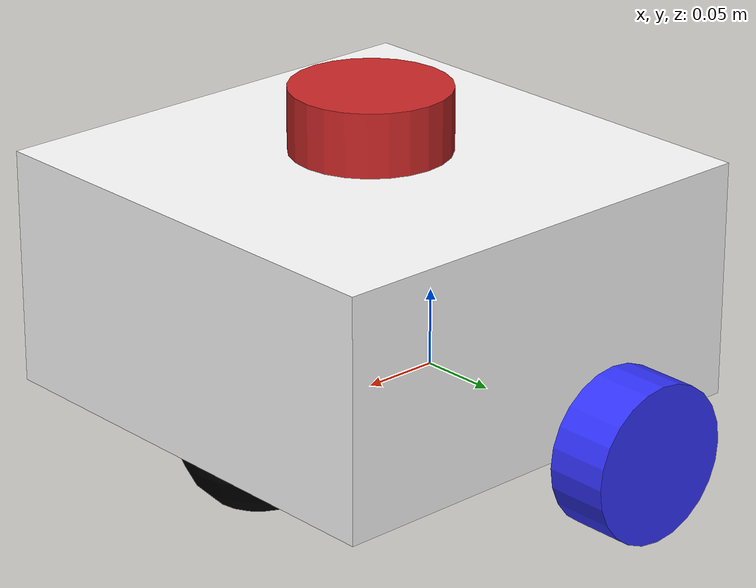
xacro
<?xml version="1.0"?>
<robot name="Robot_x_ray" xmlns:xacro="http://www.ros.org/wiki/xacro">

    <!-- Example link -->
    <xacro:include filename="properties.xacro"/>
    <xacro:include filename="robot_core.xacro"/>
    <xacro:include filename="inertial_macros.xacro"/>
    <xacro:include filename="gazebo_control.xacro"/>
    <xacro:include filename="lidar.xacro"/>
</robot>

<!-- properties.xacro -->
<robot name="Robot_x_ray" xmlns:xacro="http://www.ros.org/wiki/xacro">
    <!-- Color Definitions -->
    <material name="white">
        <color rgba= "1 1 1 1"/>
    </material>

    <material name="orange">
        <color rgba= "1 0.3 0.1 1"/>
    </material>

    <material name="blue">
        <color rgba= "0.2 0.2 1 1"/>
    </material>

    <material name="black">
        <color rgba= "0 0 0 1"/>
    </material>
</robot>

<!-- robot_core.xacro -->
<robot name="Robot_x_ray" xmlns:xacro="http://www.ros.org/wiki/xacro">

    <!-- Example link -->
    <xacro:include filename="inertial_macros.xacro"/>

    <!-- Example link -->
    <link name="base_link">
    </link>

    <joint name="base_link" type="fixed">
        <parent link="base_link"/>
        <child link="chassis"/>
        <origin xyz="-0.1 0 0"/>
    </joint>

    <!-- chassis link -->
    <link name="chassis">
        <visual>
            <origin xyz="0.15 0 0.075"/>
            <geometry>
                <box size="0.3 0.3 0.15"/>
            </geometry>
            <material name="white"/>
        </visual>
        <collision>
            <origin xyz="0.15 0 0.075"/>
            <geometry>
                <box size="0.3 0.3 0.15"/>
            </geometry>
        </collision>
        <xacro:inertial_box mass="0.5" x="0.3" y="0.3" z="0.15">
            <origin xyz="0.15 0 0.075" rpy="0 0 0"/>
        </xacro:inertial_box>
    </link>

    <!-- left wheel joint -->
    <joint name="left_wheel_joint" type="continuous">
        <parent link="base_link"/>
        <child link="left_wheel"/>
        <origin xyz="0 0.175 0" rpy="-${pi/2} 0 0"/>
        <axis xyz="0 0 1"/>
    </joint>

    <!-- left wheel link -->
    <link name="left_wheel">
        <visual>
            <geometry>
                <cylinder radius="0.05" length="0.04"/>
            </geometry>
            <material name="blue"/>
        </visual>
        <collision>
            <geometry>
                <cylinder radius="0.05" length="0.04"/>
            </geometry>
        </collision>
        <xacro:inertial_cylinder mass="0.5" length="0.04" radius="0.05">
            <origin xyz="0 0 0" rpy="0 0 0"/>
        </xacro:inertial_cylinder>
    </link>

    <!-- right wheel joint -->
    <joint name="right_wheel_joint" type="continuous">
        <parent link="base_link"/>
        <child link="right_wheel"/>
        <origin xyz="0 -0.175 0" rpy="${pi/2} 0 0"/>
        <axis xyz="0 0 -1"/>
    </joint>

    <!-- right wheel link -->
    <link name="right_wheel">
        <visual>
            <geometry>
                <cylinder radius="0.05" length="0.04"/>
            </geometry>
            <material name="blue"/>
        </visual>
        <collision>
            <geometry>
                <cylinder radius="0.05" length="0.04"/>
            </geometry>
        </collision>
        <xacro:inertial_cylinder mass="0.5" length="0.04" radius="0.05">
            <origin xyz="0 0 0" rpy="0 0 0"/>
        </xacro:inertial_cylinder>
    </link>

    <!-- caster wheel joint -->
    <joint name="caster_wheel_joint" type="fixed">
        <parent link="chassis"/>
        <child link="caster_wheel"/>
        <origin xyz="0.24 0 0"/>
    </joint>

    <!-- left wheel link -->
    <link name="caster_wheel">
        <visual>
            <geometry>
                <sphere radius="0.05"/>
            </geometry>
            <material name="black"/>
        </visual>
        <collision>
            <geometry>
                <sphere radius="0.05"/>
            </geometry>
        </collision>
        <xacro:inertial_sphere mass="0.1" radius="0.05">
            <origin xyz="0 0 0" rpy="0 0 0"/>
        </xacro:inertial_sphere>

    </link>

    <gazebo reference="chassis">
        <material>Gazebo/White</material>
    </gazebo>

    <gazebo reference="left_wheel">
        <material>Gazebo/Blue</material>
    </gazebo>

    <gazebo reference="right_wheel">
        <material>Gazebo/Blue</material>
    </gazebo>

    <gazebo reference="caster_wheel">
        <material>Gazebo/Black</material>
        <mu1 value = "0.001" />
        <mu2 value = "0.001" />
    </gazebo>

</robot>

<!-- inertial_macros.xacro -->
<robot name="Robot_x_ray" xmlns:xacro="http://www.ros.org/wiki/xacro" >

    <!-- Specify some standard inertial calculations https://en.wikipedia.org/wiki/List_of_moments_of_inertia -->
    <!-- These make use of xacro's mathematical functionality -->

    <xacro:macro name="inertial_sphere" params="mass radius *origin">
        <inertial>
            <xacro:insert_block name="origin"/>
            <mass value="${mass}" />
            <inertia ixx="${(2/5) * mass * (radius*radius)}" ixy="0.0" ixz="0.0"
                    iyy="${(2/5) * mass * (radius*radius)}" iyz="0.0"
                    izz="${(2/5) * mass * (radius*radius)}" />
        </inertial>
    </xacro:macro>

    <xacro:macro name="inertial_box" params="mass x y z *origin">
        <inertial>
            <xacro:insert_block name="origin"/>
            <mass value="${mass}" />
            <inertia ixx="${(1/12) * mass * (y*y+z*z)}" ixy="0.0" ixz="0.0"
                    iyy="${(1/12) * mass * (x*x+z*z)}" iyz="0.0"
                    izz="${(1/12) * mass * (x*x+y*y)}" />
        </inertial>
    </xacro:macro>

    <xacro:macro name="inertial_cylinder" params="mass length radius *origin">
        <inertial>
            <xacro:insert_block name="origin"/>
            <mass value="${mass}" />
            <inertia ixx="${(1/12) * mass * (3*radius*radius + length*length)}" ixy="0.0" ixz="0.0"
                    iyy="${(1/12) * mass * (3*radius*radius + length*length)}" iyz="0.0"
                    izz="${(1/2) * mass * (radius*radius)}" />
        </inertial>
    </xacro:macro>
</robot>

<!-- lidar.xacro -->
<robot xmlns:xacro="http://www.ros.org/wiki/xacro">

    <!-- lidar joint -->
    <joint name="laser_joint" type="fixed">
        <parent link="chassis"/>
        <child link="laser_frame"/>
        <origin xyz="0.15 0 0.175" rpy="0 0 0"/>
    </joint>

    <!-- laser_frame -->
    <link name="laser_frame">
        <visual>
            <geometry>
                <cylinder radius="0.05" length="0.04"/>
            </geometry>
            <material name="red"/>
        </visual>
        <collision>
            <geometry>
                <cylinder radius="0.05" length="0.04"/>
            </geometry>
        </collision>
        <xacro:inertial_cylinder mass="0.1" length="0.04" radius="0.05">
            <origin xyz="0 0 0" rpy="0 0 0"/>
        </xacro:inertial_cylinder>
    </link>

    <gazebo reference="laser_frame">
        <material>Gazebo/Red</material>
        <sensor name="laser" type="ray">
            <pose>0 0 0 0 0 0</pose>
            <visualize>true</visualize>
            <update_rate>10</update_rate>
            <ray>
                <scan>
                    <horizontal>
												<!--samples> is the number of simulated lidar rays to generate per complete laser sweep cycle.-->
                        <samples>360</samples>
												<!--resolution>: this number is multiplied by samples to determine the number range data points.-->
                        <resolution>1</resolution>
							          <min_angle>-3.14</min_angle>
                        <max_angle>3.14</max_angle>
                    </horizontal>
                </scan>
                <range>
                    <min>0.3</min>
                    <max>12</max>
                    <resolution>0.01</resolution>
                </range>
            </ray>
            <plugin name="laser_controller" filename="libgazebo_ros_ray_sensor.so">
                <ros>
                    <remapping>~/out:=scan</remapping>
                </ros>
                <output_type>sensor_msgs/LaserScan</output_type>
                <frame_name>laser_frame</frame_name>
            </plugin>
        </sensor>
    </gazebo>

</robot>
